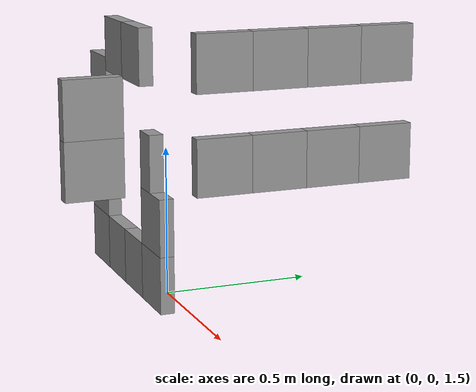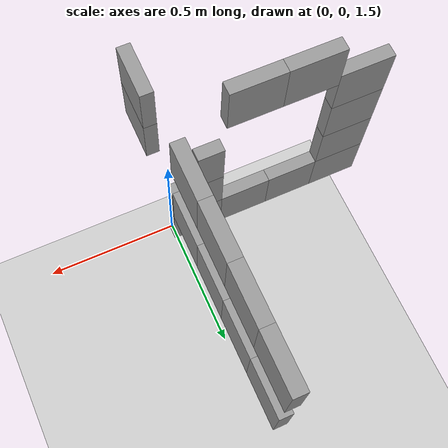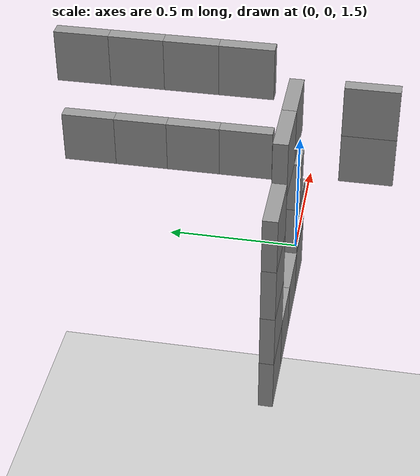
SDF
<sdf version="1.6">
 <world name="default">
  <light name="sun" type="directional">
   <pose>0 0 10 0 -0 0</pose>
   <diffuse>0.8 0.8 0.8 1</diffuse>
   <specular>0.1 0.1 0.1 1</specular>
   <attenuation>
    <range>1000</range>
    <constant>0.9</constant>
    <linear>0.01</linear>
    <quadratic>0.001</quadratic>
   </attenuation>
   <direction>-0.5 0.5 -1</direction>
  </light>
  <model name="ground_plane">
   <static>1</static>
   <link name="link">
    <collision name="collision">
     <geometry><plane><normal>0 0 1</normal><size>100 100</size></plane></geometry>
     <surface><friction><ode><mu>100</mu><mu2>50</mu2></ode></friction></surface>
    </collision>
    <visual name="visual">
     <cast_shadows>0</cast_shadows>
     <geometry><plane><normal>0 0 1</normal><size>100 100</size></plane></geometry>
     <material>
      <script><uri>file://media/materials/scripts/gazebo.material</uri><name>Gazebo/Grey</name></script>
     </material>
    </visual>
   </link>
  </model>
  <gravity>0 0 -9.8</gravity>
  <magnetic_field>6e-06 2.3e-05 -4.2e-05</magnetic_field>
  <atmosphere type="adiabatic"/>
  <physics name="default_physics" default="0" type="ode">
   <max_step_size>0.001</max_step_size>
   <real_time_factor>1</real_time_factor>
   <real_time_update_rate>1000</real_time_update_rate>
  </physics>
  <scene><ambient>0.4 0.4 0.4 1</ambient><background>0.7 0.7 0.7 1</background><shadows>1</shadows></scene>
  <spherical_coordinates>
   <surface_model>EARTH_WGS84</surface_model>
   <latitude_deg>0</latitude_deg>
   <longitude_deg>0</longitude_deg>
   <elevation>0</elevation>
   <heading_deg>0</heading_deg>
  </spherical_coordinates>
  <model name="sheet_200mm">
   <link name="link_0">
    <inertial>
     <mass>1</mass>
     <inertia>
      <ixx>0.166667</ixx>
      <ixy>0</ixy>
      <ixz>0</ixz>
      <iyy>0.166667</iyy>
      <iyz>0</iyz>
      <izz>0.166667</izz>
     </inertia>
    </inertial>
    <visual name="visual">
     <geometry><box><size>0.05 0.2 0.2</size></box></geometry>
     <material>
      <lighting>1</lighting>
      <script><uri>file://media/materials/scripts/gazebo.material</uri><name>Gazebo/Grey</name></script>
      <ambient>0.3 0.3 0.3 1</ambient>
      <diffuse>0.7 0.7 0.7 1</diffuse>
      <specular>0.01 0.01 0.01 1</specular>
      <emissive>0 0 0 1</emissive>
      <shader type="vertex"><normal_map>__default__</normal_map></shader>
     </material>
    </visual>
    <collision name="collision">
     <geometry><box><size>0.05 0.2 0.2</size></box></geometry>
     <surface>
      <friction>
       <ode><mu>1</mu><mu2>1</mu2><fdir1>0 0 0</fdir1><slip1>0</slip1><slip2>0</slip2></ode>
       <torsional>
        <coefficient>1</coefficient>
        <patch_radius>0</patch_radius>
        <surface_radius>0</surface_radius>
        <use_patch_radius>1</use_patch_radius>
        <ode><slip>0</slip></ode>
       </torsional>
      </friction>
      <bounce><restitution_coefficient>0</restitution_coefficient><threshold>1e+06</threshold></bounce>
      <contact>
       <collide_without_contact>0</collide_without_contact>
       <collide_without_contact_bitmask>1</collide_without_contact_bitmask>
       <collide_bitmask>1</collide_bitmask>
       <ode>
        <soft_cfm>0</soft_cfm>
        <soft_erp>0.2</soft_erp>
        <kp>1e+13</kp>
        <kd>1</kd>
        <max_vel>0.01</max_vel>
        <min_depth>0</min_depth>
       </ode>
       <bullet>
        <split_impulse>1</split_impulse>
        <split_impulse_penetration_threshold>-0.01</split_impulse_penetration_threshold>
        <soft_cfm>0</soft_cfm>
        <soft_erp>0.2</soft_erp>
        <kp>1e+13</kp>
        <kd>1</kd>
       </bullet>
      </contact>
     </surface>
    </collision>
   </link>
   <static>1</static>
   <pose>0 0.2 1.925 0 -0 0</pose>
  </model>
  <model name="sheet_200mm_clone">
   <link name="link_0">
    <inertial>
     <mass>1</mass>
     <inertia>
      <ixx>0.166667</ixx>
      <ixy>0</ixy>
      <ixz>0</ixz>
      <iyy>0.166667</iyy>
      <iyz>0</iyz>
      <izz>0.166667</izz>
     </inertia>
    </inertial>
    <visual name="visual">
     <geometry><box><size>0.05 0.2 0.2</size></box></geometry>
     <material>
      <lighting>1</lighting>
      <script><uri>file://media/materials/scripts/gazebo.material</uri><name>Gazebo/Grey</name></script>
      <ambient>0.3 0.3 0.3 1</ambient>
      <diffuse>0.7 0.7 0.7 1</diffuse>
      <specular>0.01 0.01 0.01 1</specular>
      <emissive>0 0 0 1</emissive>
      <shader type="vertex"><normal_map>__default__</normal_map></shader>
     </material>
    </visual>
    <collision name="collision">
     <geometry><box><size>0.05 0.2 0.2</size></box></geometry>
     <surface>
      <friction>
       <ode><mu>1</mu><mu2>1</mu2><fdir1>0 0 0</fdir1><slip1>0</slip1><slip2>0</slip2></ode>
       <torsional>
        <coefficient>1</coefficient>
        <patch_radius>0</patch_radius>
        <surface_radius>0</surface_radius>
        <use_patch_radius>1</use_patch_radius>
        <ode><slip>0</slip></ode>
       </torsional>
      </friction>
      <bounce><restitution_coefficient>0</restitution_coefficient><threshold>1e+06</threshold></bounce>
      <contact>
       <collide_without_contact>0</collide_without_contact>
       <collide_without_contact_bitmask>1</collide_without_contact_bitmask>
       <collide_bitmask>1</collide_bitmask>
       <ode>
        <soft_cfm>0</soft_cfm>
        <soft_erp>0.2</soft_erp>
        <kp>1e+13</kp>
        <kd>1</kd>
        <max_vel>0.01</max_vel>
        <min_depth>0</min_depth>
       </ode>
       <bullet>
        <split_impulse>1</split_impulse>
        <split_impulse_penetration_threshold>-0.01</split_impulse_penetration_threshold>
        <soft_cfm>0</soft_cfm>
        <soft_erp>0.2</soft_erp>
        <kp>1e+13</kp>
        <kd>1</kd>
       </bullet>
      </contact>
     </surface>
    </collision>
   </link>
   <static>1</static>
   <pose>0 0.4 1.925 0 -0 0</pose>
  </model>
  <model name="sheet_200mm_clone_0">
   <link name="link_0">
    <inertial>
     <mass>1</mass>
     <inertia>
      <ixx>0.166667</ixx>
      <ixy>0</ixy>
      <ixz>0</ixz>
      <iyy>0.166667</iyy>
      <iyz>0</iyz>
      <izz>0.166667</izz>
     </inertia>
    </inertial>
    <visual name="visual">
     <geometry><box><size>0.05 0.2 0.2</size></box></geometry>
     <material>
      <lighting>1</lighting>
      <script><uri>file://media/materials/scripts/gazebo.material</uri><name>Gazebo/Grey</name></script>
      <ambient>0.3 0.3 0.3 1</ambient>
      <diffuse>0.7 0.7 0.7 1</diffuse>
      <specular>0.01 0.01 0.01 1</specular>
      <emissive>0 0 0 1</emissive>
      <shader type="vertex"><normal_map>__default__</normal_map></shader>
     </material>
    </visual>
    <collision name="collision">
     <geometry><box><size>0.05 0.2 0.2</size></box></geometry>
     <surface>
      <friction>
       <ode><mu>1</mu><mu2>1</mu2><fdir1>0 0 0</fdir1><slip1>0</slip1><slip2>0</slip2></ode>
       <torsional>
        <coefficient>1</coefficient>
        <patch_radius>0</patch_radius>
        <surface_radius>0</surface_radius>
        <use_patch_radius>1</use_patch_radius>
        <ode><slip>0</slip></ode>
       </torsional>
      </friction>
      <bounce><restitution_coefficient>0</restitution_coefficient><threshold>1e+06</threshold></bounce>
      <contact>
       <collide_without_contact>0</collide_without_contact>
       <collide_without_contact_bitmask>1</collide_without_contact_bitmask>
       <collide_bitmask>1</collide_bitmask>
       <ode>
        <soft_cfm>0</soft_cfm>
        <soft_erp>0.2</soft_erp>
        <kp>1e+13</kp>
        <kd>1</kd>
        <max_vel>0.01</max_vel>
        <min_depth>0</min_depth>
       </ode>
       <bullet>
        <split_impulse>1</split_impulse>
        <split_impulse_penetration_threshold>-0.01</split_impulse_penetration_threshold>
        <soft_cfm>0</soft_cfm>
        <soft_erp>0.2</soft_erp>
        <kp>1e+13</kp>
        <kd>1</kd>
       </bullet>
      </contact>
     </surface>
    </collision>
   </link>
   <static>1</static>
   <pose>0 0.6 1.925 0 -0 0</pose>
  </model>
  <model name="sheet_200mm_clone_1">
   <link name="link_0">
    <inertial>
     <mass>1</mass>
     <inertia>
      <ixx>0.166667</ixx>
      <ixy>0</ixy>
      <ixz>0</ixz>
      <iyy>0.166667</iyy>
      <iyz>0</iyz>
      <izz>0.166667</izz>
     </inertia>
    </inertial>
    <visual name="visual">
     <geometry><box><size>0.05 0.2 0.2</size></box></geometry>
     <material>
      <lighting>1</lighting>
      <script><uri>file://media/materials/scripts/gazebo.material</uri><name>Gazebo/Grey</name></script>
      <ambient>0.3 0.3 0.3 1</ambient>
      <diffuse>0.7 0.7 0.7 1</diffuse>
      <specular>0.01 0.01 0.01 1</specular>
      <emissive>0 0 0 1</emissive>
      <shader type="vertex"><normal_map>__default__</normal_map></shader>
     </material>
    </visual>
    <collision name="collision">
     <geometry><box><size>0.05 0.2 0.2</size></box></geometry>
     <surface>
      <friction>
       <ode><mu>1</mu><mu2>1</mu2><fdir1>0 0 0</fdir1><slip1>0</slip1><slip2>0</slip2></ode>
       <torsional>
        <coefficient>1</coefficient>
        <patch_radius>0</patch_radius>
        <surface_radius>0</surface_radius>
        <use_patch_radius>1</use_patch_radius>
        <ode><slip>0</slip></ode>
       </torsional>
      </friction>
      <bounce><restitution_coefficient>0</restitution_coefficient><threshold>1e+06</threshold></bounce>
      <contact>
       <collide_without_contact>0</collide_without_contact>
       <collide_without_contact_bitmask>1</collide_without_contact_bitmask>
       <collide_bitmask>1</collide_bitmask>
       <ode>
        <soft_cfm>0</soft_cfm>
        <soft_erp>0.2</soft_erp>
        <kp>1e+13</kp>
        <kd>1</kd>
        <max_vel>0.01</max_vel>
        <min_depth>0</min_depth>
       </ode>
       <bullet>
        <split_impulse>1</split_impulse>
        <split_impulse_penetration_threshold>-0.01</split_impulse_penetration_threshold>
        <soft_cfm>0</soft_cfm>
        <soft_erp>0.2</soft_erp>
        <kp>1e+13</kp>
        <kd>1</kd>
       </bullet>
      </contact>
     </surface>
    </collision>
   </link>
   <static>1</static>
   <pose>0 0.8 1.925 0 -0 0</pose>
  </model>
  <model name="sheet_200mm_clone_2">
   <link name="link_0">
    <inertial>
     <mass>1</mass>
     <inertia>
      <ixx>0.166667</ixx>
      <ixy>0</ixy>
      <ixz>0</ixz>
      <iyy>0.166667</iyy>
      <iyz>0</iyz>
      <izz>0.166667</izz>
     </inertia>
    </inertial>
    <visual name="visual">
     <geometry><box><size>0.05 0.2 0.2</size></box></geometry>
     <material>
      <lighting>1</lighting>
      <script><uri>file://media/materials/scripts/gazebo.material</uri><name>Gazebo/Grey</name></script>
      <ambient>0.3 0.3 0.3 1</ambient>
      <diffuse>0.7 0.7 0.7 1</diffuse>
      <specular>0.01 0.01 0.01 1</specular>
      <emissive>0 0 0 1</emissive>
      <shader type="vertex"><normal_map>__default__</normal_map></shader>
     </material>
    </visual>
    <collision name="collision">
     <geometry><box><size>0.05 0.2 0.2</size></box></geometry>
     <surface>
      <friction>
       <ode><mu>1</mu><mu2>1</mu2><fdir1>0 0 0</fdir1><slip1>0</slip1><slip2>0</slip2></ode>
       <torsional>
        <coefficient>1</coefficient>
        <patch_radius>0</patch_radius>
        <surface_radius>0</surface_radius>
        <use_patch_radius>1</use_patch_radius>
        <ode><slip>0</slip></ode>
       </torsional>
      </friction>
      <bounce><restitution_coefficient>0</restitution_coefficient><threshold>1e+06</threshold></bounce>
      <contact>
       <collide_without_contact>0</collide_without_contact>
       <collide_without_contact_bitmask>1</collide_without_contact_bitmask>
       <collide_bitmask>1</collide_bitmask>
       <ode>
        <soft_cfm>0</soft_cfm>
        <soft_erp>0.2</soft_erp>
        <kp>1e+13</kp>
        <kd>1</kd>
        <max_vel>0.01</max_vel>
        <min_depth>0</min_depth>
       </ode>
       <bullet>
        <split_impulse>1</split_impulse>
        <split_impulse_penetration_threshold>-0.01</split_impulse_penetration_threshold>
        <soft_cfm>0</soft_cfm>
        <soft_erp>0.2</soft_erp>
        <kp>1e+13</kp>
        <kd>1</kd>
       </bullet>
      </contact>
     </surface>
    </collision>
   </link>
   <static>1</static>
   <pose>0 0.2 2.275 0 -0 0</pose>
  </model>
  <model name="sheet_200mm_clone_3">
   <link name="link_0">
    <inertial>
     <mass>1</mass>
     <inertia>
      <ixx>0.166667</ixx>
      <ixy>0</ixy>
      <ixz>0</ixz>
      <iyy>0.166667</iyy>
      <iyz>0</iyz>
      <izz>0.166667</izz>
     </inertia>
    </inertial>
    <visual name="visual">
     <geometry><box><size>0.05 0.2 0.2</size></box></geometry>
     <material>
      <lighting>1</lighting>
      <script><uri>file://media/materials/scripts/gazebo.material</uri><name>Gazebo/Grey</name></script>
      <ambient>0.3 0.3 0.3 1</ambient>
      <diffuse>0.7 0.7 0.7 1</diffuse>
      <specular>0.01 0.01 0.01 1</specular>
      <emissive>0 0 0 1</emissive>
      <shader type="vertex"><normal_map>__default__</normal_map></shader>
     </material>
    </visual>
    <collision name="collision">
     <geometry><box><size>0.05 0.2 0.2</size></box></geometry>
     <surface>
      <friction>
       <ode><mu>1</mu><mu2>1</mu2><fdir1>0 0 0</fdir1><slip1>0</slip1><slip2>0</slip2></ode>
       <torsional>
        <coefficient>1</coefficient>
        <patch_radius>0</patch_radius>
        <surface_radius>0</surface_radius>
        <use_patch_radius>1</use_patch_radius>
        <ode><slip>0</slip></ode>
       </torsional>
      </friction>
      <bounce><restitution_coefficient>0</restitution_coefficient><threshold>1e+06</threshold></bounce>
      <contact>
       <collide_without_contact>0</collide_without_contact>
       <collide_without_contact_bitmask>1</collide_without_contact_bitmask>
       <collide_bitmask>1</collide_bitmask>
       <ode>
        <soft_cfm>0</soft_cfm>
        <soft_erp>0.2</soft_erp>
        <kp>1e+13</kp>
        <kd>1</kd>
        <max_vel>0.01</max_vel>
        <min_depth>0</min_depth>
       </ode>
       <bullet>
        <split_impulse>1</split_impulse>
        <split_impulse_penetration_threshold>-0.01</split_impulse_penetration_threshold>
        <soft_cfm>0</soft_cfm>
        <soft_erp>0.2</soft_erp>
        <kp>1e+13</kp>
        <kd>1</kd>
       </bullet>
      </contact>
     </surface>
    </collision>
   </link>
   <static>1</static>
   <pose>0 0.4 2.275 0 -0 0</pose>
  </model>
  <model name="sheet_200mm_clone_4">
   <link name="link_0">
    <inertial>
     <mass>1</mass>
     <inertia>
      <ixx>0.166667</ixx>
      <ixy>0</ixy>
      <ixz>0</ixz>
      <iyy>0.166667</iyy>
      <iyz>0</iyz>
      <izz>0.166667</izz>
     </inertia>
    </inertial>
    <visual name="visual">
     <geometry><box><size>0.05 0.2 0.2</size></box></geometry>
     <material>
      <lighting>1</lighting>
      <script><uri>file://media/materials/scripts/gazebo.material</uri><name>Gazebo/Grey</name></script>
      <ambient>0.3 0.3 0.3 1</ambient>
      <diffuse>0.7 0.7 0.7 1</diffuse>
      <specular>0.01 0.01 0.01 1</specular>
      <emissive>0 0 0 1</emissive>
      <shader type="vertex"><normal_map>__default__</normal_map></shader>
     </material>
    </visual>
    <collision name="collision">
     <geometry><box><size>0.05 0.2 0.2</size></box></geometry>
     <surface>
      <friction>
       <ode><mu>1</mu><mu2>1</mu2><fdir1>0 0 0</fdir1><slip1>0</slip1><slip2>0</slip2></ode>
       <torsional>
        <coefficient>1</coefficient>
        <patch_radius>0</patch_radius>
        <surface_radius>0</surface_radius>
        <use_patch_radius>1</use_patch_radius>
        <ode><slip>0</slip></ode>
       </torsional>
      </friction>
      <bounce><restitution_coefficient>0</restitution_coefficient><threshold>1e+06</threshold></bounce>
      <contact>
       <collide_without_contact>0</collide_without_contact>
       <collide_without_contact_bitmask>1</collide_without_contact_bitmask>
       <collide_bitmask>1</collide_bitmask>
       <ode>
        <soft_cfm>0</soft_cfm>
        <soft_erp>0.2</soft_erp>
        <kp>1e+13</kp>
        <kd>1</kd>
        <max_vel>0.01</max_vel>
        <min_depth>0</min_depth>
       </ode>
       <bullet>
        <split_impulse>1</split_impulse>
        <split_impulse_penetration_threshold>-0.01</split_impulse_penetration_threshold>
        <soft_cfm>0</soft_cfm>
        <soft_erp>0.2</soft_erp>
        <kp>1e+13</kp>
        <kd>1</kd>
       </bullet>
      </contact>
     </surface>
    </collision>
   </link>
   <static>1</static>
   <pose>0 0.6 2.275 0 -0 0</pose>
  </model>
  <model name="sheet_200mm_clone_5">
   <link name="link_0">
    <inertial>
     <mass>1</mass>
     <inertia>
      <ixx>0.166667</ixx>
      <ixy>0</ixy>
      <ixz>0</ixz>
      <iyy>0.166667</iyy>
      <iyz>0</iyz>
      <izz>0.166667</izz>
     </inertia>
    </inertial>
    <visual name="visual">
     <geometry><box><size>0.05 0.2 0.2</size></box></geometry>
     <material>
      <lighting>1</lighting>
      <script><uri>file://media/materials/scripts/gazebo.material</uri><name>Gazebo/Grey</name></script>
      <ambient>0.3 0.3 0.3 1</ambient>
      <diffuse>0.7 0.7 0.7 1</diffuse>
      <specular>0.01 0.01 0.01 1</specular>
      <emissive>0 0 0 1</emissive>
      <shader type="vertex"><normal_map>__default__</normal_map></shader>
     </material>
    </visual>
    <collision name="collision">
     <geometry><box><size>0.05 0.2 0.2</size></box></geometry>
     <surface>
      <friction>
       <ode><mu>1</mu><mu2>1</mu2><fdir1>0 0 0</fdir1><slip1>0</slip1><slip2>0</slip2></ode>
       <torsional>
        <coefficient>1</coefficient>
        <patch_radius>0</patch_radius>
        <surface_radius>0</surface_radius>
        <use_patch_radius>1</use_patch_radius>
        <ode><slip>0</slip></ode>
       </torsional>
      </friction>
      <bounce><restitution_coefficient>0</restitution_coefficient><threshold>1e+06</threshold></bounce>
      <contact>
       <collide_without_contact>0</collide_without_contact>
       <collide_without_contact_bitmask>1</collide_without_contact_bitmask>
       <collide_bitmask>1</collide_bitmask>
       <ode>
        <soft_cfm>0</soft_cfm>
        <soft_erp>0.2</soft_erp>
        <kp>1e+13</kp>
        <kd>1</kd>
        <max_vel>0.01</max_vel>
        <min_depth>0</min_depth>
       </ode>
       <bullet>
        <split_impulse>1</split_impulse>
        <split_impulse_penetration_threshold>-0.01</split_impulse_penetration_threshold>
        <soft_cfm>0</soft_cfm>
        <soft_erp>0.2</soft_erp>
        <kp>1e+13</kp>
        <kd>1</kd>
       </bullet>
      </contact>
     </surface>
    </collision>
   </link>
   <static>1</static>
   <pose>0 0.8 2.275 0 -0 0</pose>
  </model>
  <model name="sheet_200mm_clone_6_clone">
   <link name="link_0">
    <inertial>
     <mass>1</mass>
     <inertia>
      <ixx>0.166667</ixx>
      <ixy>0</ixy>
      <ixz>0</ixz>
      <iyy>0.166667</iyy>
      <iyz>0</iyz>
      <izz>0.166667</izz>
     </inertia>
    </inertial>
    <visual name="visual">
     <geometry><box><size>0.05 0.2 0.2</size></box></geometry>
     <material>
      <lighting>1</lighting>
      <script><uri>file://media/materials/scripts/gazebo.material</uri><name>Gazebo/Grey</name></script>
      <ambient>0.3 0.3 0.3 1</ambient>
      <diffuse>0.7 0.7 0.7 1</diffuse>
      <specular>0.01 0.01 0.01 1</specular>
      <emissive>0 0 0 1</emissive>
      <shader type="vertex"><normal_map>__default__</normal_map></shader>
     </material>
    </visual>
    <collision name="collision">
     <geometry><box><size>0.05 0.2 0.2</size></box></geometry>
     <surface>
      <friction>
       <ode><mu>1</mu><mu2>1</mu2><fdir1>0 0 0</fdir1><slip1>0</slip1><slip2>0</slip2></ode>
       <torsional>
        <coefficient>1</coefficient>
        <patch_radius>0</patch_radius>
        <surface_radius>0</surface_radius>
        <use_patch_radius>1</use_patch_radius>
        <ode><slip>0</slip></ode>
       </torsional>
      </friction>
      <bounce><restitution_coefficient>0</restitution_coefficient><threshold>1e+06</threshold></bounce>
      <contact>
       <collide_without_contact>0</collide_without_contact>
       <collide_without_contact_bitmask>1</collide_without_contact_bitmask>
       <collide_bitmask>1</collide_bitmask>
       <ode>
        <soft_cfm>0</soft_cfm>
        <soft_erp>0.2</soft_erp>
        <kp>1e+13</kp>
        <kd>1</kd>
        <max_vel>0.01</max_vel>
        <min_depth>0</min_depth>
       </ode>
       <bullet>
        <split_impulse>1</split_impulse>
        <split_impulse_penetration_threshold>-0.01</split_impulse_penetration_threshold>
        <soft_cfm>0</soft_cfm>
        <soft_erp>0.2</soft_erp>
        <kp>1e+13</kp>
        <kd>1</kd>
       </bullet>
      </contact>
     </surface>
    </collision>
   </link>
   <static>1</static>
   <pose>-0.3 0 2.275 0 -0 1.5708</pose>
  </model>
  <model name="sheet_200mm_clone_6_clone_0">
   <link name="link_0">
    <inertial>
     <mass>1</mass>
     <inertia>
      <ixx>0.166667</ixx>
      <ixy>0</ixy>
      <ixz>0</ixz>
      <iyy>0.166667</iyy>
      <iyz>0</iyz>
      <izz>0.166667</izz>
     </inertia>
    </inertial>
    <visual name="visual">
     <geometry><box><size>0.05 0.2 0.2</size></box></geometry>
     <material>
      <lighting>1</lighting>
      <script><uri>file://media/materials/scripts/gazebo.material</uri><name>Gazebo/Grey</name></script>
      <ambient>0.3 0.3 0.3 1</ambient>
      <diffuse>0.7 0.7 0.7 1</diffuse>
      <specular>0.01 0.01 0.01 1</specular>
      <emissive>0 0 0 1</emissive>
      <shader type="vertex"><normal_map>__default__</normal_map></shader>
     </material>
    </visual>
    <collision name="collision">
     <geometry><box><size>0.05 0.2 0.2</size></box></geometry>
     <surface>
      <friction>
       <ode><mu>1</mu><mu2>1</mu2><fdir1>0 0 0</fdir1><slip1>0</slip1><slip2>0</slip2></ode>
       <torsional>
        <coefficient>1</coefficient>
        <patch_radius>0</patch_radius>
        <surface_radius>0</surface_radius>
        <use_patch_radius>1</use_patch_radius>
        <ode><slip>0</slip></ode>
       </torsional>
      </friction>
      <bounce><restitution_coefficient>0</restitution_coefficient><threshold>1e+06</threshold></bounce>
      <contact>
       <collide_without_contact>0</collide_without_contact>
       <collide_without_contact_bitmask>1</collide_without_contact_bitmask>
       <collide_bitmask>1</collide_bitmask>
       <ode>
        <soft_cfm>0</soft_cfm>
        <soft_erp>0.2</soft_erp>
        <kp>1e+13</kp>
        <kd>1</kd>
        <max_vel>0.01</max_vel>
        <min_depth>0</min_depth>
       </ode>
       <bullet>
        <split_impulse>1</split_impulse>
        <split_impulse_penetration_threshold>-0.01</split_impulse_penetration_threshold>
        <soft_cfm>0</soft_cfm>
        <soft_erp>0.2</soft_erp>
        <kp>1e+13</kp>
        <kd>1</kd>
       </bullet>
      </contact>
     </surface>
    </collision>
   </link>
   <static>1</static>
   <pose>-0.5 0 2.275 0 -0 1.5708</pose>
  </model>
  <model name="sheet_200mm_clone_6_clone_2">
   <link name="link_0">
    <inertial>
     <mass>1</mass>
     <inertia>
      <ixx>0.166667</ixx>
      <ixy>0</ixy>
      <ixz>0</ixz>
      <iyy>0.166667</iyy>
      <iyz>0</iyz>
      <izz>0.166667</izz>
     </inertia>
    </inertial>
    <visual name="visual">
     <geometry><box><size>0.05 0.2 0.2</size></box></geometry>
     <material>
      <lighting>1</lighting>
      <script><uri>file://media/materials/scripts/gazebo.material</uri><name>Gazebo/Grey</name></script>
      <ambient>0.3 0.3 0.3 1</ambient>
      <diffuse>0.7 0.7 0.7 1</diffuse>
      <specular>0.01 0.01 0.01 1</specular>
      <emissive>0 0 0 1</emissive>
      <shader type="vertex"><normal_map>__default__</normal_map></shader>
     </material>
    </visual>
    <collision name="collision">
     <geometry><box><size>0.05 0.2 0.2</size></box></geometry>
     <surface>
      <friction>
       <ode><mu>1</mu><mu2>1</mu2><fdir1>0 0 0</fdir1><slip1>0</slip1><slip2>0</slip2></ode>
       <torsional>
        <coefficient>1</coefficient>
        <patch_radius>0</patch_radius>
        <surface_radius>0</surface_radius>
        <use_patch_radius>1</use_patch_radius>
        <ode><slip>0</slip></ode>
       </torsional>
      </friction>
      <bounce><restitution_coefficient>0</restitution_coefficient><threshold>1e+06</threshold></bounce>
      <contact>
       <collide_without_contact>0</collide_without_contact>
       <collide_without_contact_bitmask>1</collide_without_contact_bitmask>
       <collide_bitmask>1</collide_bitmask>
       <ode>
        <soft_cfm>0</soft_cfm>
        <soft_erp>0.2</soft_erp>
        <kp>1e+13</kp>
        <kd>1</kd>
        <max_vel>0.01</max_vel>
        <min_depth>0</min_depth>
       </ode>
       <bullet>
        <split_impulse>1</split_impulse>
        <split_impulse_penetration_threshold>-0.01</split_impulse_penetration_threshold>
        <soft_cfm>0</soft_cfm>
        <soft_erp>0.2</soft_erp>
        <kp>1e+13</kp>
        <kd>1</kd>
       </bullet>
      </contact>
     </surface>
    </collision>
   </link>
   <static>1</static>
   <pose>-0.1 0 1.725 0 -0 1.5708</pose>
  </model>
  <model name="sheet_200mm_clone_6_clone_3">
   <link name="link_0">
    <inertial>
     <mass>1</mass>
     <inertia>
      <ixx>0.166667</ixx>
      <ixy>0</ixy>
      <ixz>0</ixz>
      <iyy>0.166667</iyy>
      <iyz>0</iyz>
      <izz>0.166667</izz>
     </inertia>
    </inertial>
    <visual name="visual">
     <geometry><box><size>0.05 0.2 0.2</size></box></geometry>
     <material>
      <lighting>1</lighting>
      <script><uri>file://media/materials/scripts/gazebo.material</uri><name>Gazebo/Grey</name></script>
      <ambient>0.3 0.3 0.3 1</ambient>
      <diffuse>0.7 0.7 0.7 1</diffuse>
      <specular>0.01 0.01 0.01 1</specular>
      <emissive>0 0 0 1</emissive>
      <shader type="vertex"><normal_map>__default__</normal_map></shader>
     </material>
    </visual>
    <collision name="collision">
     <geometry><box><size>0.05 0.2 0.2</size></box></geometry>
     <surface>
      <friction>
       <ode><mu>1</mu><mu2>1</mu2><fdir1>0 0 0</fdir1><slip1>0</slip1><slip2>0</slip2></ode>
       <torsional>
        <coefficient>1</coefficient>
        <patch_radius>0</patch_radius>
        <surface_radius>0</surface_radius>
        <use_patch_radius>1</use_patch_radius>
        <ode><slip>0</slip></ode>
       </torsional>
      </friction>
      <bounce><restitution_coefficient>0</restitution_coefficient><threshold>1e+06</threshold></bounce>
      <contact>
       <collide_without_contact>0</collide_without_contact>
       <collide_without_contact_bitmask>1</collide_without_contact_bitmask>
       <collide_bitmask>1</collide_bitmask>
       <ode>
        <soft_cfm>0</soft_cfm>
        <soft_erp>0.2</soft_erp>
        <kp>1e+13</kp>
        <kd>1</kd>
        <max_vel>0.01</max_vel>
        <min_depth>0</min_depth>
       </ode>
       <bullet>
        <split_impulse>1</split_impulse>
        <split_impulse_penetration_threshold>-0.01</split_impulse_penetration_threshold>
        <soft_cfm>0</soft_cfm>
        <soft_erp>0.2</soft_erp>
        <kp>1e+13</kp>
        <kd>1</kd>
       </bullet>
      </contact>
     </surface>
    </collision>
   </link>
   <static>1</static>
   <pose>-0.1 0 1.525 0 -0 1.5708</pose>
  </model>
  <model name="sheet_200mm_clone_6_clone_4">
   <link name="link_0">
    <inertial>
     <mass>1</mass>
     <inertia>
      <ixx>0.166667</ixx>
      <ixy>0</ixy>
      <ixz>0</ixz>
      <iyy>0.166667</iyy>
      <iyz>0</iyz>
      <izz>0.166667</izz>
     </inertia>
    </inertial>
    <visual name="visual">
     <geometry><box><size>0.05 0.2 0.2</size></box></geometry>
     <material>
      <lighting>1</lighting>
      <script><uri>file://media/materials/scripts/gazebo.material</uri><name>Gazebo/Grey</name></script>
      <ambient>0.3 0.3 0.3 1</ambient>
      <diffuse>0.7 0.7 0.7 1</diffuse>
      <specular>0.01 0.01 0.01 1</specular>
      <emissive>0 0 0 1</emissive>
      <shader type="vertex"><normal_map>__default__</normal_map></shader>
     </material>
    </visual>
    <collision name="collision">
     <geometry><box><size>0.05 0.2 0.2</size></box></geometry>
     <surface>
      <friction>
       <ode><mu>1</mu><mu2>1</mu2><fdir1>0 0 0</fdir1><slip1>0</slip1><slip2>0</slip2></ode>
       <torsional>
        <coefficient>1</coefficient>
        <patch_radius>0</patch_radius>
        <surface_radius>0</surface_radius>
        <use_patch_radius>1</use_patch_radius>
        <ode><slip>0</slip></ode>
       </torsional>
      </friction>
      <bounce><restitution_coefficient>0</restitution_coefficient><threshold>1e+06</threshold></bounce>
      <contact>
       <collide_without_contact>0</collide_without_contact>
       <collide_without_contact_bitmask>1</collide_without_contact_bitmask>
       <collide_bitmask>1</collide_bitmask>
       <ode>
        <soft_cfm>0</soft_cfm>
        <soft_erp>0.2</soft_erp>
        <kp>1e+13</kp>
        <kd>1</kd>
        <max_vel>0.01</max_vel>
        <min_depth>0</min_depth>
       </ode>
       <bullet>
        <split_impulse>1</split_impulse>
        <split_impulse_penetration_threshold>-0.01</split_impulse_penetration_threshold>
        <soft_cfm>0</soft_cfm>
        <soft_erp>0.2</soft_erp>
        <kp>1e+13</kp>
        <kd>1</kd>
       </bullet>
      </contact>
     </surface>
    </collision>
   </link>
   <static>1</static>
   <pose>-0.5 0 1.525 0 -0 1.5708</pose>
  </model>
  <model name="sheet_200mm_clone_6_clone_5">
   <link name="link_0">
    <inertial>
     <mass>1</mass>
     <inertia>
      <ixx>0.166667</ixx>
      <ixy>0</ixy>
      <ixz>0</ixz>
      <iyy>0.166667</iyy>
      <iyz>0</iyz>
      <izz>0.166667</izz>
     </inertia>
    </inertial>
    <visual name="visual">
     <geometry><box><size>0.05 0.2 0.2</size></box></geometry>
     <material>
      <lighting>1</lighting>
      <script><uri>file://media/materials/scripts/gazebo.material</uri><name>Gazebo/Grey</name></script>
      <ambient>0.3 0.3 0.3 1</ambient>
      <diffuse>0.7 0.7 0.7 1</diffuse>
      <specular>0.01 0.01 0.01 1</specular>
      <emissive>0 0 0 1</emissive>
      <shader type="vertex"><normal_map>__default__</normal_map></shader>
     </material>
    </visual>
    <collision name="collision">
     <geometry><box><size>0.05 0.2 0.2</size></box></geometry>
     <surface>
      <friction>
       <ode><mu>1</mu><mu2>1</mu2><fdir1>0 0 0</fdir1><slip1>0</slip1><slip2>0</slip2></ode>
       <torsional>
        <coefficient>1</coefficient>
        <patch_radius>0</patch_radius>
        <surface_radius>0</surface_radius>
        <use_patch_radius>1</use_patch_radius>
        <ode><slip>0</slip></ode>
       </torsional>
      </friction>
      <bounce><restitution_coefficient>0</restitution_coefficient><threshold>1e+06</threshold></bounce>
      <contact>
       <collide_without_contact>0</collide_without_contact>
       <collide_without_contact_bitmask>1</collide_without_contact_bitmask>
       <collide_bitmask>1</collide_bitmask>
       <ode>
        <soft_cfm>0</soft_cfm>
        <soft_erp>0.2</soft_erp>
        <kp>1e+13</kp>
        <kd>1</kd>
        <max_vel>0.01</max_vel>
        <min_depth>0</min_depth>
       </ode>
       <bullet>
        <split_impulse>1</split_impulse>
        <split_impulse_penetration_threshold>-0.01</split_impulse_penetration_threshold>
        <soft_cfm>0</soft_cfm>
        <soft_erp>0.2</soft_erp>
        <kp>1e+13</kp>
        <kd>1</kd>
       </bullet>
      </contact>
     </surface>
    </collision>
   </link>
   <static>1</static>
   <pose>-0.3 0 1.525 0 -0 1.5708</pose>
  </model>
  <model name="sheet_200mm_clone_6_clone_7">
   <link name="link_0">
    <inertial>
     <mass>1</mass>
     <inertia>
      <ixx>0.166667</ixx>
      <ixy>0</ixy>
      <ixz>0</ixz>
      <iyy>0.166667</iyy>
      <iyz>0</iyz>
      <izz>0.166667</izz>
     </inertia>
    </inertial>
    <visual name="visual">
     <geometry><box><size>0.05 0.2 0.2</size></box></geometry>
     <material>
      <lighting>1</lighting>
      <script><uri>file://media/materials/scripts/gazebo.material</uri><name>Gazebo/Grey</name></script>
      <ambient>0.3 0.3 0.3 1</ambient>
      <diffuse>0.7 0.7 0.7 1</diffuse>
      <specular>0.01 0.01 0.01 1</specular>
      <emissive>0 0 0 1</emissive>
      <shader type="vertex"><normal_map>__default__</normal_map></shader>
     </material>
    </visual>
    <collision name="collision">
     <geometry><box><size>0.05 0.2 0.2</size></box></geometry>
     <surface>
      <friction>
       <ode><mu>1</mu><mu2>1</mu2><fdir1>0 0 0</fdir1><slip1>0</slip1><slip2>0</slip2></ode>
       <torsional>
        <coefficient>1</coefficient>
        <patch_radius>0</patch_radius>
        <surface_radius>0</surface_radius>
        <use_patch_radius>1</use_patch_radius>
        <ode><slip>0</slip></ode>
       </torsional>
      </friction>
      <bounce><restitution_coefficient>0</restitution_coefficient><threshold>1e+06</threshold></bounce>
      <contact>
       <collide_without_contact>0</collide_without_contact>
       <collide_without_contact_bitmask>1</collide_without_contact_bitmask>
       <collide_bitmask>1</collide_bitmask>
       <ode>
        <soft_cfm>0</soft_cfm>
        <soft_erp>0.2</soft_erp>
        <kp>1e+13</kp>
        <kd>1</kd>
        <max_vel>0.01</max_vel>
        <min_depth>0</min_depth>
       </ode>
       <bullet>
        <split_impulse>1</split_impulse>
        <split_impulse_penetration_threshold>-0.01</split_impulse_penetration_threshold>
        <soft_cfm>0</soft_cfm>
        <soft_erp>0.2</soft_erp>
        <kp>1e+13</kp>
        <kd>1</kd>
       </bullet>
      </contact>
     </surface>
    </collision>
   </link>
   <static>1</static>
   <pose>-0.7 0 1.525 0 -0 1.5708</pose>
  </model>
  <model name="sheet_200mm_clone_6_clone_8">
   <link name="link_0">
    <inertial>
     <mass>1</mass>
     <inertia>
      <ixx>0.166667</ixx>
      <ixy>0</ixy>
      <ixz>0</ixz>
      <iyy>0.166667</iyy>
      <iyz>0</iyz>
      <izz>0.166667</izz>
     </inertia>
    </inertial>
    <visual name="visual">
     <geometry><box><size>0.05 0.2 0.2</size></box></geometry>
     <material>
      <lighting>1</lighting>
      <script><uri>file://media/materials/scripts/gazebo.material</uri><name>Gazebo/Grey</name></script>
      <ambient>0.3 0.3 0.3 1</ambient>
      <diffuse>0.7 0.7 0.7 1</diffuse>
      <specular>0.01 0.01 0.01 1</specular>
      <emissive>0 0 0 1</emissive>
      <shader type="vertex"><normal_map>__default__</normal_map></shader>
     </material>
    </visual>
    <collision name="collision">
     <geometry><box><size>0.05 0.2 0.2</size></box></geometry>
     <surface>
      <friction>
       <ode><mu>1</mu><mu2>1</mu2><fdir1>0 0 0</fdir1><slip1>0</slip1><slip2>0</slip2></ode>
       <torsional>
        <coefficient>1</coefficient>
        <patch_radius>0</patch_radius>
        <surface_radius>0</surface_radius>
        <use_patch_radius>1</use_patch_radius>
        <ode><slip>0</slip></ode>
       </torsional>
      </friction>
      <bounce><restitution_coefficient>0</restitution_coefficient><threshold>1e+06</threshold></bounce>
      <contact>
       <collide_without_contact>0</collide_without_contact>
       <collide_without_contact_bitmask>1</collide_without_contact_bitmask>
       <collide_bitmask>1</collide_bitmask>
       <ode>
        <soft_cfm>0</soft_cfm>
        <soft_erp>0.2</soft_erp>
        <kp>1e+13</kp>
        <kd>1</kd>
        <max_vel>0.01</max_vel>
        <min_depth>0</min_depth>
       </ode>
       <bullet>
        <split_impulse>1</split_impulse>
        <split_impulse_penetration_threshold>-0.01</split_impulse_penetration_threshold>
        <soft_cfm>0</soft_cfm>
        <soft_erp>0.2</soft_erp>
        <kp>1e+13</kp>
        <kd>1</kd>
       </bullet>
      </contact>
     </surface>
    </collision>
   </link>
   <static>1</static>
   <pose>-0.7 0 1.925 0 -0 1.5708</pose>
  </model>
  <model name="sheet_200mm_clone_6_clone_8_clone">
   <link name="link_0">
    <inertial>
     <mass>1</mass>
     <inertia>
      <ixx>0.166667</ixx>
      <ixy>0</ixy>
      <ixz>0</ixz>
      <iyy>0.166667</iyy>
      <iyz>0</iyz>
      <izz>0.166667</izz>
     </inertia>
    </inertial>
    <visual name="visual">
     <geometry><box><size>0.05 0.2 0.2</size></box></geometry>
     <material>
      <lighting>1</lighting>
      <script><uri>file://media/materials/scripts/gazebo.material</uri><name>Gazebo/Grey</name></script>
      <ambient>0.3 0.3 0.3 1</ambient>
      <diffuse>0.7 0.7 0.7 1</diffuse>
      <specular>0.01 0.01 0.01 1</specular>
      <emissive>0 0 0 1</emissive>
      <shader type="vertex"><normal_map>__default__</normal_map></shader>
     </material>
    </visual>
    <collision name="collision">
     <geometry><box><size>0.05 0.2 0.2</size></box></geometry>
     <surface>
      <friction>
       <ode><mu>1</mu><mu2>1</mu2><fdir1>0 0 0</fdir1><slip1>0</slip1><slip2>0</slip2></ode>
       <torsional>
        <coefficient>1</coefficient>
        <patch_radius>0</patch_radius>
        <surface_radius>0</surface_radius>
        <use_patch_radius>1</use_patch_radius>
        <ode><slip>0</slip></ode>
       </torsional>
      </friction>
      <bounce><restitution_coefficient>0</restitution_coefficient><threshold>1e+06</threshold></bounce>
      <contact>
       <collide_without_contact>0</collide_without_contact>
       <collide_without_contact_bitmask>1</collide_without_contact_bitmask>
       <collide_bitmask>1</collide_bitmask>
       <ode>
        <soft_cfm>0</soft_cfm>
        <soft_erp>0.2</soft_erp>
        <kp>1e+13</kp>
        <kd>1</kd>
        <max_vel>0.01</max_vel>
        <min_depth>0</min_depth>
       </ode>
       <bullet>
        <split_impulse>1</split_impulse>
        <split_impulse_penetration_threshold>-0.01</split_impulse_penetration_threshold>
        <soft_cfm>0</soft_cfm>
        <soft_erp>0.2</soft_erp>
        <kp>1e+13</kp>
        <kd>1</kd>
       </bullet>
      </contact>
     </surface>
    </collision>
   </link>
   <static>1</static>
   <pose>-0.7 0 1.725 0 -0 1.5708</pose>
  </model>
  <model name="sheet_200mm_clone_6_clone_8_clone_0">
   <link name="link_0">
    <inertial>
     <mass>1</mass>
     <inertia>
      <ixx>0.166667</ixx>
      <ixy>0</ixy>
      <ixz>0</ixz>
      <iyy>0.166667</iyy>
      <iyz>0</iyz>
      <izz>0.166667</izz>
     </inertia>
    </inertial>
    <visual name="visual">
     <geometry><box><size>0.05 0.2 0.2</size></box></geometry>
     <material>
      <lighting>1</lighting>
      <script><uri>file://media/materials/scripts/gazebo.material</uri><name>Gazebo/Grey</name></script>
      <ambient>0.3 0.3 0.3 1</ambient>
      <diffuse>0.7 0.7 0.7 1</diffuse>
      <specular>0.01 0.01 0.01 1</specular>
      <emissive>0 0 0 1</emissive>
      <shader type="vertex"><normal_map>__default__</normal_map></shader>
     </material>
    </visual>
    <collision name="collision">
     <geometry><box><size>0.05 0.2 0.2</size></box></geometry>
     <surface>
      <friction>
       <ode><mu>1</mu><mu2>1</mu2><fdir1>0 0 0</fdir1><slip1>0</slip1><slip2>0</slip2></ode>
       <torsional>
        <coefficient>1</coefficient>
        <patch_radius>0</patch_radius>
        <surface_radius>0</surface_radius>
        <use_patch_radius>1</use_patch_radius>
        <ode><slip>0</slip></ode>
       </torsional>
      </friction>
      <bounce><restitution_coefficient>0</restitution_coefficient><threshold>1e+06</threshold></bounce>
      <contact>
       <collide_without_contact>0</collide_without_contact>
       <collide_without_contact_bitmask>1</collide_without_contact_bitmask>
       <collide_bitmask>1</collide_bitmask>
       <ode>
        <soft_cfm>0</soft_cfm>
        <soft_erp>0.2</soft_erp>
        <kp>1e+13</kp>
        <kd>1</kd>
        <max_vel>0.01</max_vel>
        <min_depth>0</min_depth>
       </ode>
       <bullet>
        <split_impulse>1</split_impulse>
        <split_impulse_penetration_threshold>-0.01</split_impulse_penetration_threshold>
        <soft_cfm>0</soft_cfm>
        <soft_erp>0.2</soft_erp>
        <kp>1e+13</kp>
        <kd>1</kd>
       </bullet>
      </contact>
     </surface>
    </collision>
   </link>
   <static>1</static>
   <pose>-0.7 0 2.125 0 -0 1.5708</pose>
  </model>
  <model name="sheet_200mm_clone_2_clone">
   <link name="link_0">
    <inertial>
     <mass>1</mass>
     <inertia>
      <ixx>0.166667</ixx>
      <ixy>0</ixy>
      <ixz>0</ixz>
      <iyy>0.166667</iyy>
      <iyz>0</iyz>
      <izz>0.166667</izz>
     </inertia>
    </inertial>
    <visual name="visual">
     <geometry><box><size>0.05 0.2 0.2</size></box></geometry>
     <material>
      <lighting>1</lighting>
      <script><uri>file://media/materials/scripts/gazebo.material</uri><name>Gazebo/Grey</name></script>
      <ambient>0.3 0.3 0.3 1</ambient>
      <diffuse>0.7 0.7 0.7 1</diffuse>
      <specular>0.01 0.01 0.01 1</specular>
      <emissive>0 0 0 1</emissive>
      <shader type="vertex"><normal_map>__default__</normal_map></shader>
     </material>
    </visual>
    <collision name="collision">
     <geometry><box><size>0.05 0.2 0.2</size></box></geometry>
     <surface>
      <friction>
       <ode><mu>1</mu><mu2>1</mu2><fdir1>0 0 0</fdir1><slip1>0</slip1><slip2>0</slip2></ode>
       <torsional>
        <coefficient>1</coefficient>
        <patch_radius>0</patch_radius>
        <surface_radius>0</surface_radius>
        <use_patch_radius>1</use_patch_radius>
        <ode><slip>0</slip></ode>
       </torsional>
      </friction>
      <bounce><restitution_coefficient>0</restitution_coefficient><threshold>1e+06</threshold></bounce>
      <contact>
       <collide_without_contact>0</collide_without_contact>
       <collide_without_contact_bitmask>1</collide_without_contact_bitmask>
       <collide_bitmask>1</collide_bitmask>
       <ode>
        <soft_cfm>0</soft_cfm>
        <soft_erp>0.2</soft_erp>
        <kp>1e+13</kp>
        <kd>1</kd>
        <max_vel>0.01</max_vel>
        <min_depth>0</min_depth>
       </ode>
       <bullet>
        <split_impulse>1</split_impulse>
        <split_impulse_penetration_threshold>-0.01</split_impulse_penetration_threshold>
        <soft_cfm>0</soft_cfm>
        <soft_erp>0.2</soft_erp>
        <kp>1e+13</kp>
        <kd>1</kd>
       </bullet>
      </contact>
     </surface>
    </collision>
   </link>
   <static>1</static>
   <pose>0 -0.25 2.15 0 -0 0</pose>
  </model>
  <model name="sheet_200mm_clone_2_clone_clone">
   <link name="link_0">
    <inertial>
     <mass>1</mass>
     <inertia>
      <ixx>0.166667</ixx>
      <ixy>0</ixy>
      <ixz>0</ixz>
      <iyy>0.166667</iyy>
      <iyz>0</iyz>
      <izz>0.166667</izz>
     </inertia>
    </inertial>
    <visual name="visual">
     <geometry><box><size>0.05 0.2 0.2</size></box></geometry>
     <material>
      <lighting>1</lighting>
      <script><uri>file://media/materials/scripts/gazebo.material</uri><name>Gazebo/Grey</name></script>
      <ambient>0.3 0.3 0.3 1</ambient>
      <diffuse>0.7 0.7 0.7 1</diffuse>
      <specular>0.01 0.01 0.01 1</specular>
      <emissive>0 0 0 1</emissive>
      <shader type="vertex"><normal_map>__default__</normal_map></shader>
     </material>
    </visual>
    <collision name="collision">
     <geometry><box><size>0.05 0.2 0.2</size></box></geometry>
     <surface>
      <friction>
       <ode><mu>1</mu><mu2>1</mu2><fdir1>0 0 0</fdir1><slip1>0</slip1><slip2>0</slip2></ode>
       <torsional>
        <coefficient>1</coefficient>
        <patch_radius>0</patch_radius>
        <surface_radius>0</surface_radius>
        <use_patch_radius>1</use_patch_radius>
        <ode><slip>0</slip></ode>
       </torsional>
      </friction>
      <bounce><restitution_coefficient>0</restitution_coefficient><threshold>1e+06</threshold></bounce>
      <contact>
       <collide_without_contact>0</collide_without_contact>
       <collide_without_contact_bitmask>1</collide_without_contact_bitmask>
       <collide_bitmask>1</collide_bitmask>
       <ode>
        <soft_cfm>0</soft_cfm>
        <soft_erp>0.2</soft_erp>
        <kp>1e+13</kp>
        <kd>1</kd>
        <max_vel>0.01</max_vel>
        <min_depth>0</min_depth>
       </ode>
       <bullet>
        <split_impulse>1</split_impulse>
        <split_impulse_penetration_threshold>-0.01</split_impulse_penetration_threshold>
        <soft_cfm>0</soft_cfm>
        <soft_erp>0.2</soft_erp>
        <kp>1e+13</kp>
        <kd>1</kd>
       </bullet>
      </contact>
     </surface>
    </collision>
   </link>
   <static>1</static>
   <pose>0 -0.25 1.95 0 -0 0</pose>
  </model>
  <model name="sheet_200mm_clone_6_0_0">
   <link name="link_0">
    <inertial>
     <mass>1</mass>
     <inertia>
      <ixx>0.166667</ixx>
      <ixy>0</ixy>
      <ixz>0</ixz>
      <iyy>0.166667</iyy>
      <iyz>0</iyz>
      <izz>0.166667</izz>
     </inertia>
    </inertial>
    <visual name="visual">
     <geometry><box><size>0.05 0.1 0.2</size></box></geometry>
     <material>
      <lighting>1</lighting>
      <script><uri>file://media/materials/scripts/gazebo.material</uri><name>Gazebo/Grey</name></script>
      <ambient>0.3 0.3 0.3 1</ambient>
      <diffuse>0.7 0.7 0.7 1</diffuse>
      <specular>0.01 0.01 0.01 1</specular>
      <emissive>0 0 0 1</emissive>
      <shader type="vertex"><normal_map>__default__</normal_map></shader>
     </material>
    </visual>
    <collision name="collision">
     <geometry><box><size>0.05 0.1 0.2</size></box></geometry>
     <surface>
      <friction>
       <ode><mu>1</mu><mu2>1</mu2><fdir1>0 0 0</fdir1><slip1>0</slip1><slip2>0</slip2></ode>
       <torsional>
        <coefficient>1</coefficient>
        <patch_radius>0</patch_radius>
        <surface_radius>0</surface_radius>
        <use_patch_radius>1</use_patch_radius>
        <ode><slip>0</slip></ode>
       </torsional>
      </friction>
      <bounce><restitution_coefficient>0</restitution_coefficient><threshold>1e+06</threshold></bounce>
      <contact>
       <collide_without_contact>0</collide_without_contact>
       <collide_without_contact_bitmask>1</collide_without_contact_bitmask>
       <collide_bitmask>1</collide_bitmask>
       <ode>
        <soft_cfm>0</soft_cfm>
        <soft_erp>0.2</soft_erp>
        <kp>1e+13</kp>
        <kd>1</kd>
        <max_vel>0.01</max_vel>
        <min_depth>0</min_depth>
       </ode>
       <bullet>
        <split_impulse>1</split_impulse>
        <split_impulse_penetration_threshold>-0.01</split_impulse_penetration_threshold>
        <soft_cfm>0</soft_cfm>
        <soft_erp>0.2</soft_erp>
        <kp>1e+13</kp>
        <kd>1</kd>
       </bullet>
      </contact>
     </surface>
    </collision>
   </link>
   <static>1</static>
   <pose>-0.15 0 1.925 0 -0 1.5708</pose>
  </model>
 </world>
</sdf>
